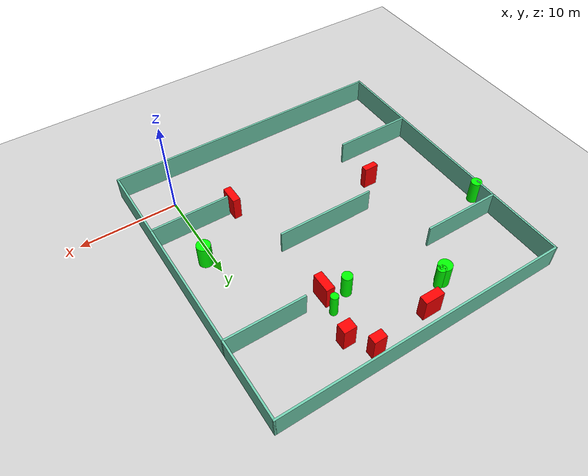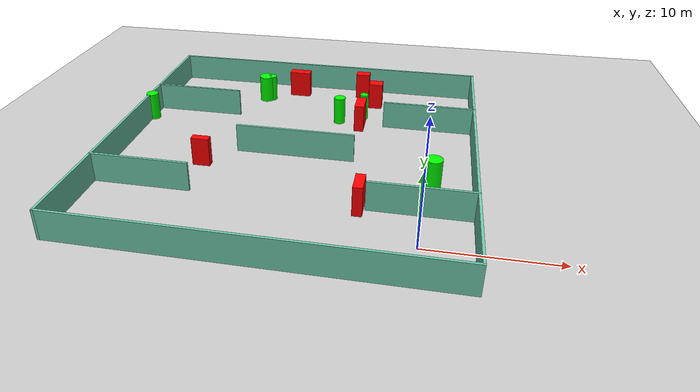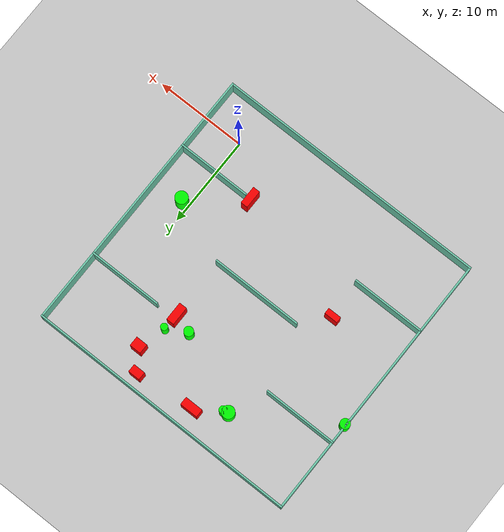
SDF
<sdf version="1.7">
 <world name="default">
  <light name="sun" type="directional">
   <pose>0 0 10 0 -0 0</pose>
   <diffuse>0.8 0.8 0.8 1</diffuse>
   <specular>0.2 0.2 0.2 1</specular>
   <attenuation>
    <range>1000</range>
    <constant>0.9</constant>
    <linear>0.01</linear>
    <quadratic>0.001</quadratic>
   </attenuation>
   <direction>-0.5 0.1 -0.9</direction>
   <spot><inner_angle>0</inner_angle><outer_angle>0</outer_angle><falloff>0</falloff></spot>
  </light>
  <model name="ground_plane">
   <static>1</static>
   <link name="link">
    <collision name="collision">
     <geometry><plane><normal>0 0 1</normal><size>100 100</size></plane></geometry>
     <surface>
      <contact><collide_bitmask>65535</collide_bitmask></contact>
      <friction><ode><mu>100</mu><mu2>50</mu2></ode></friction>
     </surface>
    </collision>
    <visual name="visual">
     <cast_shadows>0</cast_shadows>
     <geometry><plane><normal>0 0 1</normal><size>100 100</size></plane></geometry>
     <material>
      <script><uri>file://media/materials/scripts/gazebo.material</uri><name>Gazebo/Grey</name></script>
     </material>
    </visual>
   </link>
  </model>
  <gravity>0 0 -9.8</gravity>
  <magnetic_field>6e-06 2.3e-05 -4.2e-05</magnetic_field>
  <atmosphere type="adiabatic"/>
  <physics type="ode">
   <max_step_size>0.001</max_step_size>
   <real_time_factor>1</real_time_factor>
   <real_time_update_rate>1000</real_time_update_rate>
  </physics>
  <scene><ambient>0.4 0.4 0.4 1</ambient><background>0.7 0.7 0.7 1</background><shadows>1</shadows></scene>
  <spherical_coordinates>
   <surface_model>EARTH_WGS84</surface_model>
   <latitude_deg>0</latitude_deg>
   <longitude_deg>0</longitude_deg>
   <elevation>0</elevation>
   <heading_deg>0</heading_deg>
  </spherical_coordinates>
  <model name="my_base_walls">
   <link name="Wall_10">
    <collision name="Wall_10_Collision">
     <geometry><box><size>8.2 0.2 2.5</size></box></geometry>
     <pose>0 0 1.25 0 -0 0</pose>
    </collision>
    <visual name="Wall_10_Visual">
     <pose>0 0 1.25 0 -0 0</pose>
     <geometry><box><size>8.2 0.2 2.5</size></box></geometry>
     <material>
      <script><uri>file://media/materials/scripts/gazebo.material</uri><name>Gazebo/Grey</name></script>
      <ambient>0.435294 0.796078 0.67451 1</ambient>
     </material>
     <meta><layer>0</layer></meta>
    </visual>
    <pose>-11 -7 0 0 -0 0</pose>
   </link>
   <link name="Wall_12">
    <collision name="Wall_12_Collision">
     <geometry><box><size>8.2 0.2 2.5</size></box></geometry>
     <pose>0 0 1.25 0 -0 0</pose>
    </collision>
    <visual name="Wall_12_Visual">
     <pose>0 0 1.25 0 -0 0</pose>
     <geometry><box><size>8.2 0.2 2.5</size></box></geometry>
     <material>
      <script><uri>file://media/materials/scripts/gazebo.material</uri><name>Gazebo/Grey</name></script>
      <ambient>0.435294 0.796078 0.67451 1</ambient>
     </material>
     <meta><layer>0</layer></meta>
    </visual>
    <pose>-11 7 0 0 -0 0</pose>
   </link>
   <link name="Wall_14">
    <collision name="Wall_14_Collision">
     <geometry><box><size>8.2 0.2 2.5</size></box></geometry>
     <pose>0 0 1.25 0 -0 0</pose>
    </collision>
    <visual name="Wall_14_Visual">
     <pose>0 0 1.25 0 -0 0</pose>
     <geometry><box><size>8.2 0.2 2.5</size></box></geometry>
     <material>
      <script><uri>file://media/materials/scripts/gazebo.material</uri><name>Gazebo/Grey</name></script>
      <ambient>0.435294 0.796078 0.67451 1</ambient>
     </material>
     <meta><layer>0</layer></meta>
    </visual>
    <pose>11 7 0 0 -0 3.14159</pose>
   </link>
   <link name="Wall_16">
    <collision name="Wall_16_Collision">
     <geometry><box><size>10.2 0.2 2.5</size></box></geometry>
     <pose>0 0 1.25 0 -0 0</pose>
    </collision>
    <visual name="Wall_16_Visual">
     <pose>0 0 1.25 0 -0 0</pose>
     <geometry><box><size>10.2 0.2 2.5</size></box></geometry>
     <material>
      <script><uri>file://media/materials/scripts/gazebo.material</uri><name>Gazebo/Grey</name></script>
      <ambient>0.435294 0.796078 0.67451 1</ambient>
     </material>
     <meta><layer>0</layer></meta>
    </visual>
    <pose>0 0 0 0 -0 3.14159</pose>
   </link>
   <link name="Wall_2">
    <collision name="Wall_2_Collision">
     <geometry><box><size>30.2 0.2 2.5</size></box></geometry>
     <pose>0 0 1.25 0 -0 0</pose>
    </collision>
    <visual name="Wall_2_Visual">
     <pose>0 0 1.25 0 -0 0</pose>
     <geometry><box><size>30.2 0.2 2.5</size></box></geometry>
     <material>
      <script><uri>file://media/materials/scripts/gazebo.material</uri><name>Gazebo/Grey</name></script>
      <ambient>0.435294 0.796078 0.67451 1</ambient>
     </material>
     <meta><layer>0</layer></meta>
    </visual>
    <pose>0 -15 0 0 -0 3.14159</pose>
   </link>
   <link name="Wall_3">
    <collision name="Wall_3_Collision">
     <geometry><box><size>30.2 0.2 2.5</size></box></geometry>
     <pose>0 0 1.25 0 -0 0</pose>
    </collision>
    <visual name="Wall_3_Visual">
     <pose>0 0 1.25 0 -0 0</pose>
     <geometry><box><size>30.2 0.2 2.5</size></box></geometry>
     <material>
      <script><uri>file://media/materials/scripts/gazebo.material</uri><name>Gazebo/Grey</name></script>
      <ambient>0.435294 0.796078 0.67451 1</ambient>
     </material>
     <meta><layer>0</layer></meta>
    </visual>
    <pose>-15 0 0 0 -0 1.5708</pose>
   </link>
   <link name="Wall_4">
    <collision name="Wall_4_Collision">
     <geometry><box><size>30.2 0.2 2.5</size></box></geometry>
     <pose>0 0 1.25 0 -0 0</pose>
    </collision>
    <visual name="Wall_4_Visual">
     <pose>0 0 1.25 0 -0 0</pose>
     <geometry><box><size>30.2 0.2 2.5</size></box></geometry>
     <material>
      <script><uri>file://media/materials/scripts/gazebo.material</uri><name>Gazebo/Grey</name></script>
      <ambient>0.435294 0.796078 0.67451 1</ambient>
     </material>
     <meta><layer>0</layer></meta>
    </visual>
    <pose>0 15 0 0 -0 0</pose>
   </link>
   <link name="Wall_6">
    <collision name="Wall_6_Collision">
     <geometry><box><size>30.2 0.2 2.5</size></box></geometry>
     <pose>0 0 1.25 0 -0 0</pose>
    </collision>
    <visual name="Wall_6_Visual">
     <pose>0 0 1.25 0 -0 0</pose>
     <geometry><box><size>30.2 0.2 2.5</size></box></geometry>
     <material>
      <script><uri>file://media/materials/scripts/gazebo.material</uri><name>Gazebo/Grey</name></script>
      <ambient>0.435294 0.796078 0.67451 1</ambient>
     </material>
     <meta><layer>0</layer></meta>
    </visual>
    <pose>15 0 0 0 -0 1.5708</pose>
   </link>
   <link name="Wall_8">
    <collision name="Wall_8_Collision">
     <geometry><box><size>8.2 0.2 2.5</size></box></geometry>
     <pose>0 0 1.25 0 -0 0</pose>
    </collision>
    <visual name="Wall_8_Visual">
     <pose>0 0 1.25 0 -0 0</pose>
     <geometry><box><size>8.2 0.2 2.5</size></box></geometry>
     <material>
      <script><uri>file://media/materials/scripts/gazebo.material</uri><name>Gazebo/Grey</name></script>
      <ambient>0.435294 0.796078 0.67451 1</ambient>
     </material>
     <meta><layer>0</layer></meta>
    </visual>
    <pose>11 -7 0 0 -0 3.14159</pose>
   </link>
   <static>1</static>
   <pose>-11 11 0 0 -0 0</pose>
  </model>
  <model name="cylinder1">
   <static>1</static>
   <link name="link">
    <inertial>
     <mass>1</mass>
     <inertia><ixx>0.5</ixx><ixy>0</ixy><ixz>0</ixz><iyy>0.5</iyy><iyz>0</iyz><izz>1</izz></inertia>
    </inertial>
    <collision name="collision">
     <geometry><cylinder><radius>0.6995304377895413</radius><length>2.5</length></cylinder></geometry>
    </collision>
    <visual name="visual">
     <geometry><cylinder><radius>0.6995304377895413</radius><length>2.5</length></cylinder></geometry>
     <material>
      <ambient>0 1 0 1</ambient>
      <diffuse>0 1 0 1</diffuse>
      <specular>0.1 0.1 0.1 1</specular>
      <emissive>0 0 0 0</emissive>
     </material>
    </visual>
   </link>
   <pose>0.7217781500759948 8.235957723125365 1.25 0 0 0</pose>
  </model>
  <model name="cylinder2">
   <static>1</static>
   <link name="link">
    <inertial>
     <mass>1</mass>
     <inertia><ixx>0.5</ixx><ixy>0</ixy><ixz>0</ixz><iyy>0.5</iyy><iyz>0</iyz><izz>1</izz></inertia>
    </inertial>
    <collision name="collision">
     <geometry><cylinder><radius>0.5213623354961802</radius><length>2.5</length></cylinder></geometry>
    </collision>
    <visual name="visual">
     <geometry><cylinder><radius>0.5213623354961802</radius><length>2.5</length></cylinder></geometry>
     <material>
      <ambient>0 1 0 1</ambient>
      <diffuse>0 1 0 1</diffuse>
      <specular>0.1 0.1 0.1 1</specular>
      <emissive>0 0 0 0</emissive>
     </material>
    </visual>
   </link>
   <pose>-8.248070585328344 18.23365319956627 1.25 0 0 0</pose>
  </model>
  <model name="cylinder3">
   <static>1</static>
   <link name="link">
    <inertial>
     <mass>1</mass>
     <inertia><ixx>0.5</ixx><ixy>0</ixy><ixz>0</ixz><iyy>0.5</iyy><iyz>0</iyz><izz>1</izz></inertia>
    </inertial>
    <collision name="collision">
     <geometry><cylinder><radius>0.43227025169670397</radius><length>2.5</length></cylinder></geometry>
    </collision>
    <visual name="visual">
     <geometry><cylinder><radius>0.43227025169670397</radius><length>2.5</length></cylinder></geometry>
     <material>
      <ambient>0 1 0 1</ambient>
      <diffuse>0 1 0 1</diffuse>
      <specular>0.1 0.1 0.1 1</specular>
      <emissive>0 0 0 0</emissive>
     </material>
    </visual>
   </link>
   <pose>-15.729401444677563 22.170439020498474 1.25 0 0 0</pose>
  </model>
  <model name="cylinder4">
   <static>1</static>
   <link name="link">
    <inertial>
     <mass>1</mass>
     <inertia><ixx>0.5</ixx><ixy>0</ixy><ixz>0</ixz><iyy>0.5</iyy><iyz>0</iyz><izz>1</izz></inertia>
    </inertial>
    <collision name="collision">
     <geometry><cylinder><radius>0.5474636176485093</radius><length>2.5</length></cylinder></geometry>
    </collision>
    <visual name="visual">
     <geometry><cylinder><radius>0.5474636176485093</radius><length>2.5</length></cylinder></geometry>
     <material>
      <ambient>0 1 0 1</ambient>
      <diffuse>0 1 0 1</diffuse>
      <specular>0.1 0.1 0.1 1</specular>
      <emissive>0 0 0 0</emissive>
     </material>
    </visual>
   </link>
   <pose>-25.873848263482834 15.814679020094609 1.25 0 0 0</pose>
  </model>
  <model name="cylinder5">
   <static>1</static>
   <link name="link">
    <inertial>
     <mass>1</mass>
     <inertia><ixx>0.5</ixx><ixy>0</ixy><ixz>0</ixz><iyy>0.5</iyy><iyz>0</iyz><izz>1</izz></inertia>
    </inertial>
    <collision name="collision">
     <geometry><cylinder><radius>0.3829308476236146</radius><length>2.5</length></cylinder></geometry>
    </collision>
    <visual name="visual">
     <geometry><cylinder><radius>0.3829308476236146</radius><length>2.5</length></cylinder></geometry>
     <material>
      <ambient>0 1 0 1</ambient>
      <diffuse>0 1 0 1</diffuse>
      <specular>0.1 0.1 0.1 1</specular>
      <emissive>0 0 0 0</emissive>
     </material>
    </visual>
   </link>
   <pose>-6.080748562689603 19.382745757440656 1.25 0 0 0</pose>
  </model>
  <model name="cylinder6">
   <static>1</static>
   <link name="link">
    <inertial>
     <mass>1</mass>
     <inertia><ixx>0.5</ixx><ixy>0</ixy><ixz>0</ixz><iyy>0.5</iyy><iyz>0</iyz><izz>1</izz></inertia>
    </inertial>
    <collision name="collision">
     <geometry><cylinder><radius>0.697531846542179</radius><length>2.5</length></cylinder></geometry>
    </collision>
    <visual name="visual">
     <geometry><cylinder><radius>0.697531846542179</radius><length>2.5</length></cylinder></geometry>
     <material>
      <ambient>0 1 0 1</ambient>
      <diffuse>0 1 0 1</diffuse>
      <specular>0.1 0.1 0.1 1</specular>
      <emissive>0 0 0 0</emissive>
     </material>
    </visual>
   </link>
   <pose>-16.253048478272262 22.0306517063935 1.25 0 0 0</pose>
  </model>
  <model name="box1">
   <static>1</static>
   <link name="link">
    <inertial>
     <mass>1</mass>
     <inertia><ixx>0.083</ixx><ixy>0</ixy><ixz>0</ixz><iyy>0.083</iyy><iyz>0</iyz><izz>0.083</izz></inertia>
    </inertial>
    <collision name="collision">
     <geometry><box><size>1.3081146440324458 0.8871082627374529 2.5</size></box></geometry>
    </collision>
    <visual name="visual">
     <geometry><box><size>1.3081146440324458 0.8871082627374529 2.5</size></box></geometry>
     <material>
      <ambient>1 0 0 1</ambient>
      <diffuse>1 0 0 1</diffuse>
      <specular>0.1 0.1 0.1 1</specular>
      <emissive>0 0 0 0</emissive>
     </material>
    </visual>
    <sensor name="my_contact" type="contact">
     <contact><collision>box_collision</collision><topic>__default_topic__</topic></contact>
    </sensor>
   </link>
   <pose>-6.7822732527978395 24.538486221537454 1.25 0 0 0</pose>
  </model>
  <model name="box2">
   <static>1</static>
   <link name="link">
    <inertial>
     <mass>1</mass>
     <inertia><ixx>0.083</ixx><ixy>0</ixy><ixz>0</ixz><iyy>0.083</iyy><iyz>0</iyz><izz>0.083</izz></inertia>
    </inertial>
    <collision name="collision">
     <geometry><box><size>2.00826370547688 0.8924631798617502 2.5</size></box></geometry>
    </collision>
    <visual name="visual">
     <geometry><box><size>2.00826370547688 0.8924631798617502 2.5</size></box></geometry>
     <material>
      <ambient>1 0 0 1</ambient>
      <diffuse>1 0 0 1</diffuse>
      <specular>0.1 0.1 0.1 1</specular>
      <emissive>0 0 0 0</emissive>
     </material>
    </visual>
    <sensor name="my_contact" type="contact">
     <contact><collision>box_collision</collision><topic>__default_topic__</topic></contact>
    </sensor>
   </link>
   <pose>-13.128435046439218 23.88671175144672 1.25 0 0 0</pose>
  </model>
  <model name="box3">
   <static>1</static>
   <link name="link">
    <inertial>
     <mass>1</mass>
     <inertia><ixx>0.083</ixx><ixy>0</ixy><ixz>0</ixz><iyy>0.083</iyy><iyz>0</iyz><izz>0.083</izz></inertia>
    </inertial>
    <collision name="collision">
     <geometry><box><size>1.2735106620087628 1.0754123296608047 2.5</size></box></geometry>
    </collision>
    <visual name="visual">
     <geometry><box><size>1.2735106620087628 1.0754123296608047 2.5</size></box></geometry>
     <material>
      <ambient>1 0 0 1</ambient>
      <diffuse>1 0 0 1</diffuse>
      <specular>0.1 0.1 0.1 1</specular>
      <emissive>0 0 0 0</emissive>
     </material>
    </visual>
    <sensor name="my_contact" type="contact">
     <contact><collision>box_collision</collision><topic>__default_topic__</topic></contact>
    </sensor>
   </link>
   <pose>-5.250678412037486 22.357292546890786 1.25 0 0 0</pose>
  </model>
  <model name="box4">
   <static>1</static>
   <link name="link">
    <inertial>
     <mass>1</mass>
     <inertia><ixx>0.083</ixx><ixy>0</ixy><ixz>0</ixz><iyy>0.083</iyy><iyz>0</iyz><izz>0.083</izz></inertia>
    </inertial>
    <collision name="collision">
     <geometry><box><size>0.7801448916561533 1.9923280985013143 2.5</size></box></geometry>
    </collision>
    <visual name="visual">
     <geometry><box><size>0.7801448916561533 1.9923280985013143 2.5</size></box></geometry>
     <material>
      <ambient>1 0 0 1</ambient>
      <diffuse>1 0 0 1</diffuse>
      <specular>0.1 0.1 0.1 1</specular>
      <emissive>0 0 0 0</emissive>
     </material>
    </visual>
    <sensor name="my_contact" type="contact">
     <contact><collision>box_collision</collision><topic>__default_topic__</topic></contact>
    </sensor>
   </link>
   <pose>-4.592185363757981 3.956987582664401 1.25 0 0 0</pose>
  </model>
  <model name="box5">
   <static>1</static>
   <link name="link">
    <inertial>
     <mass>1</mass>
     <inertia><ixx>0.083</ixx><ixy>0</ixy><ixz>0</ixz><iyy>0.083</iyy><iyz>0</iyz><izz>0.083</izz></inertia>
    </inertial>
    <collision name="collision">
     <geometry><box><size>1.5004926243316914 0.6480281492272402 2.5</size></box></geometry>
    </collision>
    <visual name="visual">
     <geometry><box><size>1.5004926243316914 0.6480281492272402 2.5</size></box></geometry>
     <material>
      <ambient>1 0 0 1</ambient>
      <diffuse>1 0 0 1</diffuse>
      <specular>0.1 0.1 0.1 1</specular>
      <emissive>0 0 0 0</emissive>
     </material>
    </visual>
    <sensor name="my_contact" type="contact">
     <contact><collision>box_collision</collision><topic>__default_topic__</topic></contact>
    </sensor>
   </link>
   <pose>-18.333526338501525 8.179817084963249 1.25 0 0 0</pose>
  </model>
  <model name="box6">
   <static>1</static>
   <link name="link">
    <inertial>
     <mass>1</mass>
     <inertia><ixx>0.083</ixx><ixy>0</ixy><ixz>0</ixz><iyy>0.083</iyy><iyz>0</iyz><izz>0.083</izz></inertia>
    </inertial>
    <collision name="collision">
     <geometry><box><size>0.8592536906349075 2.0602864956699944 2.5</size></box></geometry>
    </collision>
    <visual name="visual">
     <geometry><box><size>0.8592536906349075 2.0602864956699944 2.5</size></box></geometry>
     <material>
      <ambient>1 0 0 1</ambient>
      <diffuse>1 0 0 1</diffuse>
      <specular>0.1 0.1 0.1 1</specular>
      <emissive>0 0 0 0</emissive>
     </material>
    </visual>
    <sensor name="my_contact" type="contact">
     <contact><collision>box_collision</collision><topic>__default_topic__</topic></contact>
    </sensor>
   </link>
   <pose>-6.217282574666694 17.608658104199783 1.25 0 0 0</pose>
  </model>
 </world>
</sdf>
